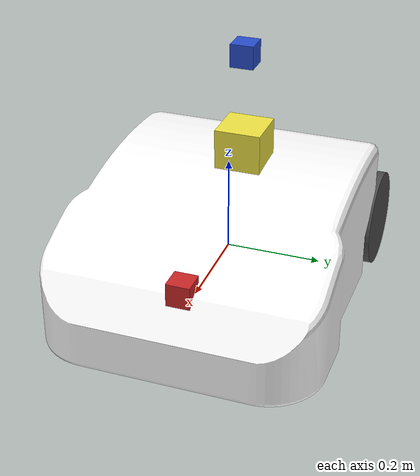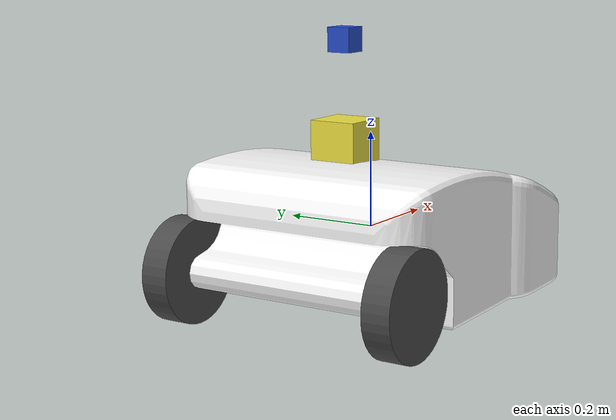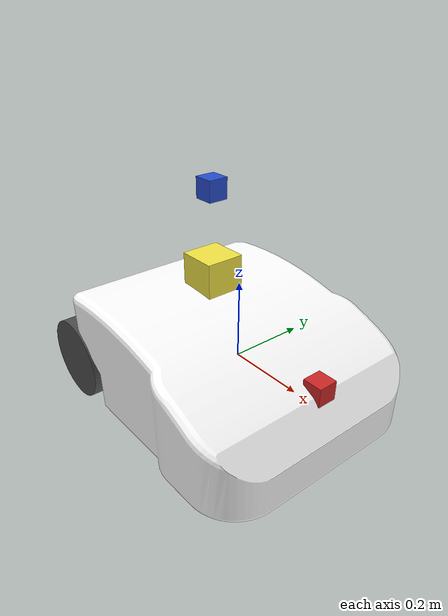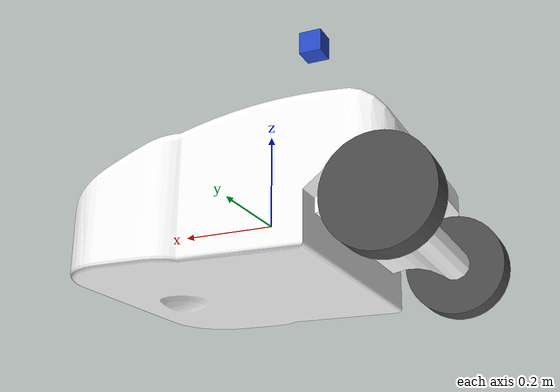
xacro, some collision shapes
<?xml version='1.0'?>

<robot name="mark1" xmlns:xacro="http://www.ros.org/wiki/xacro">

  <xacro:include filename="$(find mark1)/src/mark1_description/urdf/mark1.gazebo" />
  <xacro:include filename="$(find mark1)/src/mark1_description/urdf/materials.xacro" />
  <xacro:include filename="$(find mark1)/src/mark1_description/urdf/macros.xacro" />

  <link name="base_link">
    <inertial>
      <origin
        xyz="0.00096237 -0.01836 0.0013951"
        rpy="0 0 0" />
      <mass
        value="10.207" />
      <inertia
         ixx="0.5" ixy="0" ixz="0"
          iyy="1.0" iyz="0"
          izz="0.1" />
    </inertial>
    <visual>
      <origin
        xyz="0 0 0"
        rpy="0 0 0" />
      <geometry>
        <mesh
          filename="package://mark1/src/mark1_description/meshes/base_link.STL" />
      </geometry>
      <material
        name="">
        <color
          rgba="1 1 1 1" />
      </material>
    </visual>
    <collision>
      <origin
        xyz="0 0 0"
        rpy="0 0 0" />
      <geometry>
        <mesh
          filename="package://mark1/src/mark1_description/meshes/base_link.STL" />
      </geometry>
    </collision>
  </link>
  <link    name="Left_Motor_Link">
    <inertial>
      <origin
        xyz="-6.9389E-18 -0.029509 1.3878E-17"
        rpy="0 0 0" />
      <mass
        value="1.483" />
      <inertia
        ixx="0.0078938" ixy="1.3747E-18" ixz="-2.0644E-19"
        iyy="0.014347" iyz="-3.4936E-18"
        izz="0.0078938" />
    </inertial>
    <visual>
      <origin
        xyz="0 0 0"
        rpy="0 0 0" />
      <geometry>
        <mesh
          filename="package://mark1/src/mark1_description/meshes/Left_Motor_Link.STL" />
      </geometry>
      <material
        name="">
        <color
          rgba="0.29804 0.29804 0.29804 1" />
      </material>
    </visual>
    <collision>
      <origin
        xyz="0 0 0"
        rpy="0 0 0" />
      <geometry>
        <mesh
          filename="package://mark1/src/mark1_description/meshes/Left_Motor_Link.STL" />
      </geometry>
    </collision>
  </link>
  <joint name="Left_Motor_Joint" type="continuous">
    <origin
      xyz="-0.31944 0.20433 -0.05511"
      rpy="-3.1415 3.1415 3.141" />
    <parent
      link="base_link" />
    <child
      link="Left_Motor_Link" />
    <axis
      xyz="0 1 0" />
  </joint>
  <link name="Right_Motor_Link">
    <inertial>
      <origin
        xyz="0 -0.02951 7.5894E-18"
        rpy="0 0 0" />
      <mass
        value="1.483" />
      <inertia
        ixx="0.0078938"
        ixy="4.2444E-18"
        ixz="-7.123E-20"
        iyy="0.014347"
        iyz="-7.9282E-19"
        izz="0.0078938" />
    </inertial>
    <visual>
      <origin
        xyz="0 0 0"
        rpy="0 0 0" />
      <geometry>
        <mesh
          filename="package://mark1/src/mark1_description/meshes/Right_Motor_Link.STL" />
      </geometry>
      <material
        name="">
        <color
          rgba="0.29804 0.29804 0.29804 1" />
      </material>
    </visual>
    <collision>
      <origin
        xyz="0 0 0"
        rpy="0 0 0" />
      <geometry>
        <mesh
          filename="package://mark1/src/mark1_description/meshes/Right_Motor_Link.STL" />
      </geometry>
    </collision>
  </link>
  <joint  name="Right_Motor_Joint" type="continuous">
    <origin
      xyz="-0.3197 -0.23965 -0.05511"
      rpy="-3.14 3.1415 3.1395" />
    <parent
      link="base_link" />
    <child
      link="Right_Motor_Link" />
    <axis
      xyz="0 1 0" />
  </joint>

  <!-- Hokuyo Laser -->
  <link name="laser_link">
    <collision>
      <origin xyz="0 0 0" rpy="0 0 0"/>
      <geometry>
    <box size="0.1 0.1 0.1"/>
      </geometry>
    </collision>

    <visual>
      <origin xyz="0 0 0" rpy="0 0 0"/>
      <geometry>
        <mesh filename="package://mark1/src/mark1_description/meshes/hokuyo.dae"/>
      </geometry>
    </visual>

    <inertial>
      <mass value="1e-5" />
      <origin xyz="0 0 0" rpy="0 0 0"/>
      <inertia ixx="1e-6" ixy="0" ixz="0" iyy="1e-6" iyz="0" izz="1e-6" />
    </inertial>
  </link>

    <joint name="hokuyo_joint" type="fixed">
    <axis xyz="0 1 0" />
    <origin xyz="-0.1 0 0.19" rpy="0 0 0"/>
    <parent link="base_link"/>
    <child link="laser_link"/>
  </joint>

  <!-- Camera -->
  <link name="camera_link">
    <collision>
      <origin xyz="0 0 0" rpy="0 0 0"/>
      <geometry>
    <box size="0 0 0"/>
      </geometry>
    </collision>

    <visual>
      <origin xyz="0 0 0" rpy="0 0 0"/>
      <geometry>
    <box size="0.05 0.05  0.05"/>
      </geometry>
      <material name="red"/>
    </visual>

    <inertial>
      <mass value="1e-5" />
      <origin xyz="0 0 0" rpy="0 0 0"/>
      <inertia ixx="1e-6" ixy="0" ixz="0" iyy="1e-6" iyz="0" izz="1e-6" />
    </inertial>
  </link>

  <joint name="camera_joint" type="fixed">
    <axis xyz="0 1 0" />
    <origin xyz="0.27 0 0.05" rpy="0 0  0"/>
    <parent link="base_link"/>
    <child link="camera_link"/>
  </joint>

    <!-- Depth Camera -->
<link name="depth_camera_link">

    <collision>
      <origin xyz="0 0 0" rpy="0 0 0"/>
      <geometry>
    <box size="0.05 0.05 0.05"/>
      </geometry>
    </collision>

    <visual>
      <origin xyz="0 0 0" rpy="0 0 0"/>
      <geometry>
    <box size="0.05 0.05  0.05"/>
      </geometry>
      <material name="blue"/>
    </visual>

    <inertial>
      <mass value="0.210" />
      <origin xyz="0 0 0" rpy="0 0 0"/>
      <inertia ixx="1e-6" ixy="0" ixz="0" iyy="1e-6" iyz="0" izz="1e-6" />
    </inertial>
  </link>

<joint name="depth_camera_joint" type="fixed">
    <axis xyz="0 1 0" />
    <origin xyz="-0.1 0 0.4" rpy="0 0  0"/>
    <parent link="base_link"/>
    <child link="depth_camera_link"/>
  </joint>
 <link name="depth_camera_optical">
  </link>
 <joint name="depth_camera_optical_joint" type="fixed">
    <axis xyz="0 1 0" />
    <origin xyz="0 0 0" rpy="-1.57 0 -1.57"/>
    <parent link="depth_camera_link"/>
    <child link="depth_camera_optical"/>
  </joint>

</robot>
